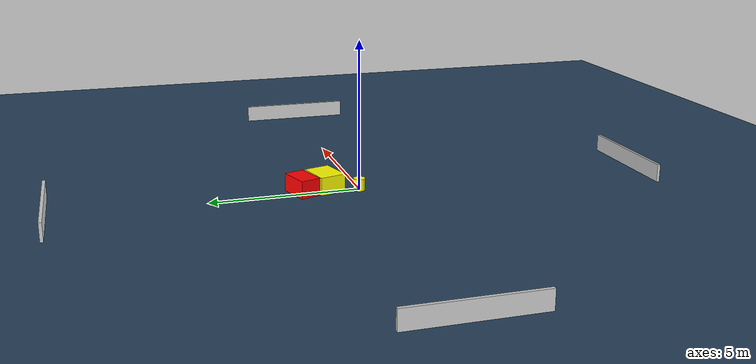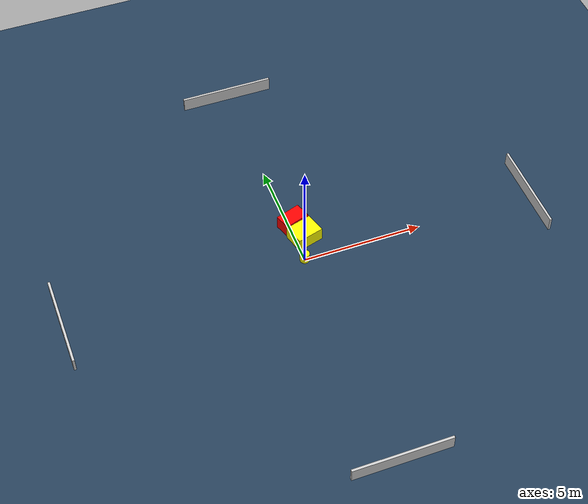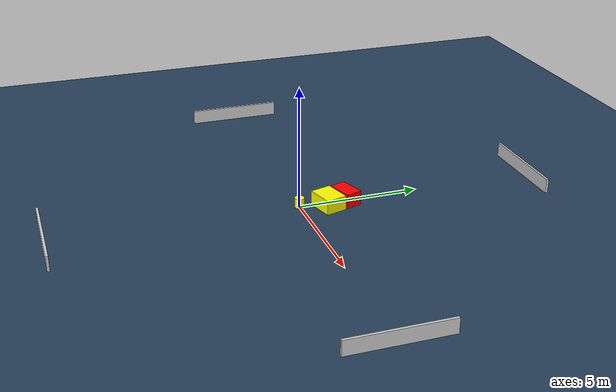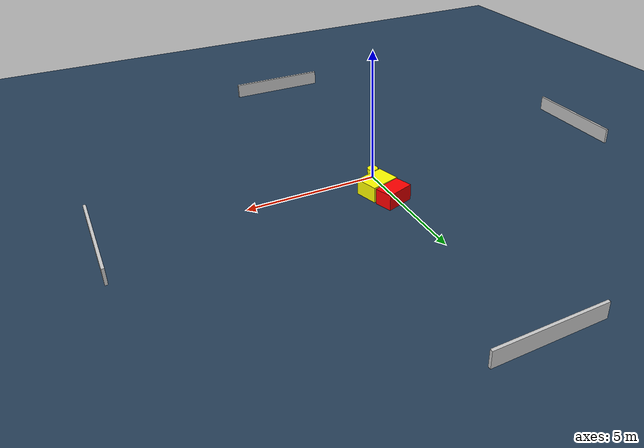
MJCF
<?xml version="1.0" ?>
<mujoco model="generated_environment">
  <option timestep="0.01" integrator="RK4" cone="elliptic"/>
  <default>
    <geom density="1"/>
  </default>
  <asset>
    <texture builtin="gradient" height="3072" name="skybox" rgb1="0.3 0.5 0.7" rgb2="0 0 0" type="skybox" width="512"/>
    <texture builtin="checker" height="300" name="groundplane" rgb1="0.2 0.3 0.4" rgb2="0.1 0.2 0.3" type="2d" width="300"/>
    <material name="groundplane" reflectance="0.2" texrepeat="5 5" texture="groundplane"/>
  </asset>
  <worldbody>
    <light dir="0 0 -1" directional="true" pos="0 0 1.5"/>
    <geom condim="3" friction="0.5 0.005 0.001" material="groundplane" name="floor" pos="0 0 0" size="0 0 0.05" type="plane"/>
    <body name="walls">
      <geom name="wall_1" condim="4" pos="-10.0 0.0 0.3" rgba="0.800000011920929 0.800000011920929 0.800000011920929 1.0" size="0.05 2.0 0.3" type="box"/>
      <geom name="wall_2" condim="4" pos="10.0 0.0 0.3" rgba="0.800000011920929 0.800000011920929 0.800000011920929 1.0" size="0.05 2.0 0.3" type="box"/>
      <geom name="wall_3" condim="4" pos="0.0 -10.0 0.3" rgba="0.800000011920929 0.800000011920929 0.800000011920929 1.0" size="2.0 0.05 0.3" type="box"/>
      <geom name="wall_4" condim="4" pos="0.0 10.0 0.3" rgba="0.800000011920929 0.800000011920929 0.800000011920929 1.0" size="2.0 0.05 0.3" type="box"/>
    </body>
    <body name="robot">
      <joint name="joint_x" type="slide" pos="0 0 0" axis="1 0 0"/>
      <joint name="joint_y" type="slide" pos="0 0 0" axis="0 1 0"/>
      <geom name="robot" type="cylinder" pos="0.0 0.0 0.2" size="0.2 0.2 0.0" mass="5.0" friction="1.0 0.005 0.0001" condim="4" rgba="1.0 1.0 0.0 1.0"/>
    </body>
    <body name="obstacle_1_movable">
      <geom name="obstacle_1_movable" condim="4" pos="0.38824345727384774 1.0827163389270302 0.3" euler="0 0 105.74969908389475" friction="0.0 0.005 0.001" rgba="1.0 1.0 0.0 1.0" size="0.44353371176697176 0.5659684457579819 0.3" type="box" mass="0.1"/>
      <joint type="free"/>
    </body>
    <body name="obstacle_2_static">
      <geom name="obstacle_2_static" condim="4" pos="0.1706842476532029 1.8903199974054377 0.3" euler="0 0 108.53899457718803" friction="0.0 0.005 0.001" rgba="1.0 0.0 0.0 1.0" size="0.33874609233267383 0.5405186734366858 0.3" type="box"/>
    </body>
  </worldbody>
  <actuator>
    <motor name="actuator_x" joint="joint_x" gear="1" ctrlrange="-1 1"/>
    <motor name="actuator_y" joint="joint_y" gear="1" ctrlrange="-1 1"/>
  </actuator>
</mujoco>
